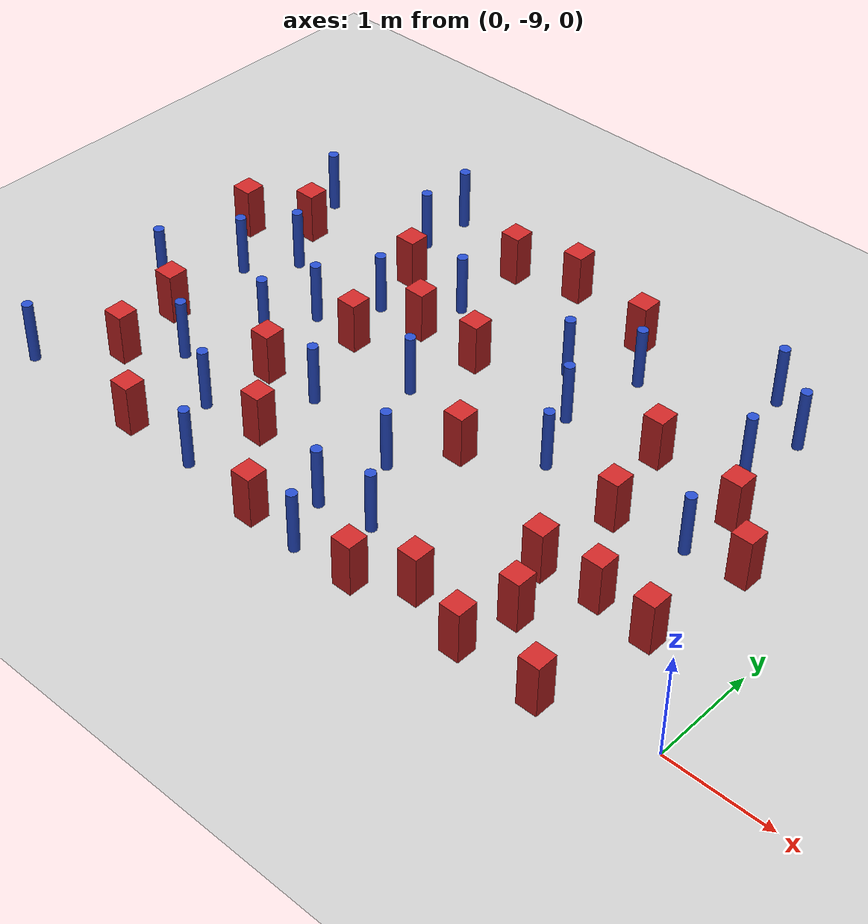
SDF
<sdf version="1.6">
 <world name="default">
  <model name="ground_plane">
   <static>1</static>
   <link name="link">
    <collision name="collision">
     <geometry><plane><normal>0 0 1</normal><size>100 100</size></plane></geometry>
     <surface><friction><ode><mu>100</mu><mu2>50</mu2></ode></friction></surface>
    </collision>
    <visual name="visual">
     <cast_shadows>0</cast_shadows>
     <geometry><plane><normal>0 0 1</normal><size>100 100</size></plane></geometry>
     <material>
      <ambient>1.0 1.0 1.0 1.0</ambient>
      <diffuse>0.8 0.8 0.8 1.0</diffuse>
      <specular>0.01 0.01 0.01 1.000000</specular>
     </material>
    </visual>
   </link>
  </model>
  <model name="pole_obstacle1">
   <static>true</static>
   <pose>-3.12867233561 -8.74492226256 2.88873142074e-08 -9.9053668994e-09 4.60219948987e-07 -1.20965994963e-07</pose>
   <link name="link">
    <pose>0 0 0.3 0 -0 0</pose>
    <inertial>
     <mass>1</mass>
     <inertia><ixx>0.145833</ixx><ixy>0</ixy><ixz>0</ixz><iyy>0.145833</iyy><iyz>0</iyz><izz>0.125</izz></inertia>
    </inertial>
    <collision name="collision">
     <geometry><cylinder><radius>0.05</radius><length>.6</length></cylinder></geometry>
    </collision>
    <visual name="visual">
     <geometry><cylinder><radius>0.05</radius><length>.6</length></cylinder></geometry>
     <material>
      <script><name>Gazebo/Blue</name><uri>file://media/materials/scripts/gazebo.material</uri></script>
     </material>
    </visual>
   </link>
  </model>
  <model name="pole_obstacle2">
   <static>true</static>
   <pose>-3.64135293143 -8.83523034497 2.88873142074e-08 -9.90536692318e-09 4.6021994893e-07 -1.20965994988e-07</pose>
   <link name="link">
    <pose>0 0 0.3 0 -0 0</pose>
    <inertial>
     <mass>1</mass>
     <inertia><ixx>0.145833</ixx><ixy>0</ixy><ixz>0</ixz><iyy>0.145833</iyy><iyz>0</iyz><izz>0.125</izz></inertia>
    </inertial>
    <collision name="collision">
     <geometry><cylinder><radius>0.05</radius><length>.6</length></cylinder></geometry>
    </collision>
    <visual name="visual">
     <geometry><cylinder><radius>0.05</radius><length>.6</length></cylinder></geometry>
     <material>
      <script><name>Gazebo/Blue</name><uri>file://media/materials/scripts/gazebo.material</uri></script>
     </material>
    </visual>
   </link>
  </model>
  <model name="square_post_obstacle4">
   <static>true</static>
   <pose>-3.94886343294 -6.59833227282 8.22691968438e-08 7.22125133819e-06 -7.54495500217e-07 2.29674213826e-05</pose>
   <link name="link">
    <pose>0 0 0.25 0 -0 0</pose>
    <inertial>
     <mass>100</mass>
     <inertia>
      <ixx>0.166667</ixx>
      <ixy>0</ixy>
      <ixz>0</ixz>
      <iyy>0.166667</iyy>
      <iyz>0</iyz>
      <izz>0.166667</izz>
     </inertia>
    </inertial>
    <collision name="collision"><geometry><box><size>.2 .2 .5</size></box></geometry></collision>
    <visual name="visual">
     <geometry><box><size>.2 .2 .5</size></box></geometry>
     <material>
      <script><name>Gazebo/Red</name><uri>file://media/materials/scripts/gazebo.material</uri></script>
     </material>
    </visual>
   </link>
  </model>
  <model name="pole_obstacle19">
   <static>true</static>
   <pose>-5.90801611379 -8.27726933785 2.88873142074e-08 -9.9053668967e-09 4.60219948993e-07 -1.20965994957e-07</pose>
   <link name="link">
    <pose>0 0 0.3 0 -0 0</pose>
    <inertial>
     <mass>1</mass>
     <inertia><ixx>0.145833</ixx><ixy>0</ixy><ixz>0</ixz><iyy>0.145833</iyy><iyz>0</iyz><izz>0.125</izz></inertia>
    </inertial>
    <collision name="collision">
     <geometry><cylinder><radius>0.05</radius><length>.6</length></cylinder></geometry>
    </collision>
    <visual name="visual">
     <geometry><cylinder><radius>0.05</radius><length>.6</length></cylinder></geometry>
     <material>
      <script><name>Gazebo/Blue</name><uri>file://media/materials/scripts/gazebo.material</uri></script>
     </material>
    </visual>
   </link>
  </model>
  <model name="pole_obstacle28">
   <static>true</static>
   <pose>-6.84868157761 -9.22441285087 2.88873142074e-08 -9.9053668967e-09 4.60219948993e-07 -1.20965994957e-07</pose>
   <link name="link">
    <pose>0 0 0.3 0 -0 0</pose>
    <inertial>
     <mass>1</mass>
     <inertia><ixx>0.145833</ixx><ixy>0</ixy><ixz>0</ixz><iyy>0.145833</iyy><iyz>0</iyz><izz>0.125</izz></inertia>
    </inertial>
    <collision name="collision">
     <geometry><cylinder><radius>0.05</radius><length>.6</length></cylinder></geometry>
    </collision>
    <visual name="visual">
     <geometry><cylinder><radius>0.05</radius><length>.6</length></cylinder></geometry>
     <material>
      <script><name>Gazebo/Blue</name><uri>file://media/materials/scripts/gazebo.material</uri></script>
     </material>
    </visual>
   </link>
  </model>
  <model name="square_post_obstacle23">
   <static>true</static>
   <pose>-3.20889072496 -7.59951702189 8.22691968438e-08 7.2212513382e-06 -7.54495500217e-07 2.29674213826e-05</pose>
   <link name="link">
    <pose>0 0 0.25 0 -0 0</pose>
    <inertial>
     <mass>100</mass>
     <inertia>
      <ixx>0.166667</ixx>
      <ixy>0</ixy>
      <ixz>0</ixz>
      <iyy>0.166667</iyy>
      <iyz>0</iyz>
      <izz>0.166667</izz>
     </inertia>
    </inertial>
    <collision name="collision"><geometry><box><size>.2 .2 .5</size></box></geometry></collision>
    <visual name="visual">
     <geometry><box><size>.2 .2 .5</size></box></geometry>
     <material>
      <script><name>Gazebo/Red</name><uri>file://media/materials/scripts/gazebo.material</uri></script>
     </material>
    </visual>
   </link>
  </model>
  <model name="square_post_obstacle27">
   <static>true</static>
   <pose>-0.969384696367 -9.24757038586 8.22691968438e-08 7.22125133819e-06 -7.54495500217e-07 2.29674213826e-05</pose>
   <link name="link">
    <pose>0 0 0.25 0 -0 0</pose>
    <inertial>
     <mass>100</mass>
     <inertia>
      <ixx>0.166667</ixx>
      <ixy>0</ixy>
      <ixz>0</ixz>
      <iyy>0.166667</iyy>
      <iyz>0</iyz>
      <izz>0.166667</izz>
     </inertia>
    </inertial>
    <collision name="collision"><geometry><box><size>.2 .2 .5</size></box></geometry></collision>
    <visual name="visual">
     <geometry><box><size>.2 .2 .5</size></box></geometry>
     <material>
      <script><name>Gazebo/Red</name><uri>file://media/materials/scripts/gazebo.material</uri></script>
     </material>
    </visual>
   </link>
  </model>
  <model name="square_post_obstacle30">
   <static>true</static>
   <pose>-6.9409519317 -6.51875384566 8.22691968438e-08 7.2212513382e-06 -7.54495500217e-07 2.29674213826e-05</pose>
   <link name="link">
    <pose>0 0 0.25 0 -0 0</pose>
    <inertial>
     <mass>100</mass>
     <inertia>
      <ixx>0.166667</ixx>
      <ixy>0</ixy>
      <ixz>0</ixz>
      <iyy>0.166667</iyy>
      <iyz>0</iyz>
      <izz>0.166667</izz>
     </inertia>
    </inertial>
    <collision name="collision"><geometry><box><size>.2 .2 .5</size></box></geometry></collision>
    <visual name="visual">
     <geometry><box><size>.2 .2 .5</size></box></geometry>
     <material>
      <script><name>Gazebo/Red</name><uri>file://media/materials/scripts/gazebo.material</uri></script>
     </material>
    </visual>
   </link>
  </model>
  <model name="pole_obstacle36">
   <static>true</static>
   <pose>-6.16772446758 -6.61041729582 2.88873142074e-08 -9.90536690842e-09 4.60219948965e-07 -1.20965994976e-07</pose>
   <link name="link">
    <pose>0 0 0.3 0 -0 0</pose>
    <inertial>
     <mass>1</mass>
     <inertia><ixx>0.145833</ixx><ixy>0</ixy><ixz>0</ixz><iyy>0.145833</iyy><iyz>0</iyz><izz>0.125</izz></inertia>
    </inertial>
    <collision name="collision">
     <geometry><cylinder><radius>0.05</radius><length>.6</length></cylinder></geometry>
    </collision>
    <visual name="visual">
     <geometry><cylinder><radius>0.05</radius><length>.6</length></cylinder></geometry>
     <material>
      <script><name>Gazebo/Blue</name><uri>file://media/materials/scripts/gazebo.material</uri></script>
     </material>
    </visual>
   </link>
  </model>
  <model name="pole_obstacle38">
   <static>true</static>
   <pose>-1.68911911757 -5.19332564806 2.88873142074e-08 -9.90536689852e-09 4.60219948989e-07 -1.2096599496e-07</pose>
   <link name="link">
    <pose>0 0 0.3 0 -0 0</pose>
    <inertial>
     <mass>1</mass>
     <inertia><ixx>0.145833</ixx><ixy>0</ixy><ixz>0</ixz><iyy>0.145833</iyy><iyz>0</iyz><izz>0.125</izz></inertia>
    </inertial>
    <collision name="collision">
     <geometry><cylinder><radius>0.05</radius><length>.6</length></cylinder></geometry>
    </collision>
    <visual name="visual">
     <geometry><cylinder><radius>0.05</radius><length>.6</length></cylinder></geometry>
     <material>
      <script><name>Gazebo/Blue</name><uri>file://media/materials/scripts/gazebo.material</uri></script>
     </material>
    </visual>
   </link>
  </model>
  <model name="pole_obstacle44">
   <static>true</static>
   <pose>-6.48443075153 -7.03172573249 2.88873142074e-08 -9.90536690842e-09 4.60219948965e-07 -1.20965994976e-07</pose>
   <link name="link">
    <pose>0 0 0.3 0 -0 0</pose>
    <inertial>
     <mass>1</mass>
     <inertia><ixx>0.145833</ixx><ixy>0</ixy><ixz>0</ixz><iyy>0.145833</iyy><iyz>0</iyz><izz>0.125</izz></inertia>
    </inertial>
    <collision name="collision">
     <geometry><cylinder><radius>0.05</radius><length>.6</length></cylinder></geometry>
    </collision>
    <visual name="visual">
     <geometry><cylinder><radius>0.05</radius><length>.6</length></cylinder></geometry>
     <material>
      <script><name>Gazebo/Blue</name><uri>file://media/materials/scripts/gazebo.material</uri></script>
     </material>
    </visual>
   </link>
  </model>
  <model name="pole_obstacle49">
   <static>true</static>
   <pose>-5.24488563336 -8.61744730685 2.88873142074e-08 -9.9053668967e-09 4.60219948993e-07 -1.20965994957e-07</pose>
   <link name="link">
    <pose>0 0 0.3 0 -0 0</pose>
    <inertial>
     <mass>1</mass>
     <inertia><ixx>0.145833</ixx><ixy>0</ixy><ixz>0</ixz><iyy>0.145833</iyy><iyz>0</iyz><izz>0.125</izz></inertia>
    </inertial>
    <collision name="collision">
     <geometry><cylinder><radius>0.05</radius><length>.6</length></cylinder></geometry>
    </collision>
    <visual name="visual">
     <geometry><cylinder><radius>0.05</radius><length>.6</length></cylinder></geometry>
     <material>
      <script><name>Gazebo/Blue</name><uri>file://media/materials/scripts/gazebo.material</uri></script>
     </material>
    </visual>
   </link>
  </model>
  <model name="pole_obstacle55">
   <static>true</static>
   <pose>-6.63396487807 -5.67322181627 2.88873142074e-08 -9.90536690842e-09 4.60219948965e-07 -1.20965994976e-07</pose>
   <link name="link">
    <pose>0 0 0.3 0 -0 0</pose>
    <inertial>
     <mass>1</mass>
     <inertia><ixx>0.145833</ixx><ixy>0</ixy><ixz>0</ixz><iyy>0.145833</iyy><iyz>0</iyz><izz>0.125</izz></inertia>
    </inertial>
    <collision name="collision">
     <geometry><cylinder><radius>0.05</radius><length>.6</length></cylinder></geometry>
    </collision>
    <visual name="visual">
     <geometry><cylinder><radius>0.05</radius><length>.6</length></cylinder></geometry>
     <material>
      <script><name>Gazebo/Blue</name><uri>file://media/materials/scripts/gazebo.material</uri></script>
     </material>
    </visual>
   </link>
  </model>
  <model name="pole_obstacle66">
   <static>true</static>
   <pose>-6.89583773151 -7.67243533911 2.88873142074e-08 -9.90536690842e-09 4.60219948965e-07 -1.20965994976e-07</pose>
   <link name="link">
    <pose>0 0 0.3 0 -0 0</pose>
    <inertial>
     <mass>1</mass>
     <inertia><ixx>0.145833</ixx><ixy>0</ixy><ixz>0</ixz><iyy>0.145833</iyy><iyz>0</iyz><izz>0.125</izz></inertia>
    </inertial>
    <collision name="collision">
     <geometry><cylinder><radius>0.05</radius><length>.6</length></cylinder></geometry>
    </collision>
    <visual name="visual">
     <geometry><cylinder><radius>0.05</radius><length>.6</length></cylinder></geometry>
     <material>
      <script><name>Gazebo/Blue</name><uri>file://media/materials/scripts/gazebo.material</uri></script>
     </material>
    </visual>
   </link>
  </model>
  <model name="pole_obstacle67">
   <static>true</static>
   <pose>-4.56918458173 -6.08402707474 2.88873142074e-08 -9.90536690842e-09 4.60219948965e-07 -1.20965994976e-07</pose>
   <link name="link">
    <pose>0 0 0.3 0 -0 0</pose>
    <inertial>
     <mass>1</mass>
     <inertia><ixx>0.145833</ixx><ixy>0</ixy><ixz>0</ixz><iyy>0.145833</iyy><iyz>0</iyz><izz>0.125</izz></inertia>
    </inertial>
    <collision name="collision">
     <geometry><cylinder><radius>0.05</radius><length>.6</length></cylinder></geometry>
    </collision>
    <visual name="visual">
     <geometry><cylinder><radius>0.05</radius><length>.6</length></cylinder></geometry>
     <material>
      <script><name>Gazebo/Blue</name><uri>file://media/materials/scripts/gazebo.material</uri></script>
     </material>
    </visual>
   </link>
  </model>
  <model name="square_post_obstacle56">
   <static>true</static>
   <pose>-5.229321086 -6.05015893627 8.22691968438e-08 7.2212513382e-06 -7.54495500217e-07 2.29674213826e-05</pose>
   <link name="link">
    <pose>0 0 0.25 0 -0 0</pose>
    <inertial>
     <mass>100</mass>
     <inertia>
      <ixx>0.166667</ixx>
      <ixy>0</ixy>
      <ixz>0</ixz>
      <iyy>0.166667</iyy>
      <iyz>0</iyz>
      <izz>0.166667</izz>
     </inertia>
    </inertial>
    <collision name="collision"><geometry><box><size>.2 .2 .5</size></box></geometry></collision>
    <visual name="visual">
     <geometry><box><size>.2 .2 .5</size></box></geometry>
     <material>
      <script><name>Gazebo/Red</name><uri>file://media/materials/scripts/gazebo.material</uri></script>
     </material>
    </visual>
   </link>
  </model>
  <model name="pole_obstacle80">
   <static>true</static>
   <pose>-1.22519912602 -5.5488598311 2.88873142074e-08 -9.90536689852e-09 4.60219948989e-07 -1.2096599496e-07</pose>
   <link name="link">
    <pose>0 0 0.3 0 -0 0</pose>
    <inertial>
     <mass>1</mass>
     <inertia><ixx>0.145833</ixx><ixy>0</ixy><ixz>0</ixz><iyy>0.145833</iyy><iyz>0</iyz><izz>0.125</izz></inertia>
    </inertial>
    <collision name="collision">
     <geometry><cylinder><radius>0.05</radius><length>.6</length></cylinder></geometry>
    </collision>
    <visual name="visual">
     <geometry><cylinder><radius>0.05</radius><length>.6</length></cylinder></geometry>
     <material>
      <script><name>Gazebo/Blue</name><uri>file://media/materials/scripts/gazebo.material</uri></script>
     </material>
    </visual>
   </link>
  </model>
  <model name="square_post_obstacle71">
   <static>true</static>
   <pose>-3.95317050462 -5.17468336658 8.22691968438e-08 7.2212513382e-06 -7.54495500217e-07 2.29674213826e-05</pose>
   <link name="link">
    <pose>0 0 0.25 0 -0 0</pose>
    <inertial>
     <mass>100</mass>
     <inertia>
      <ixx>0.166667</ixx>
      <ixy>0</ixy>
      <ixz>0</ixz>
      <iyy>0.166667</iyy>
      <iyz>0</iyz>
      <izz>0.166667</izz>
     </inertia>
    </inertial>
    <collision name="collision"><geometry><box><size>.2 .2 .5</size></box></geometry></collision>
    <visual name="visual">
     <geometry><box><size>.2 .2 .5</size></box></geometry>
     <material>
      <script><name>Gazebo/Red</name><uri>file://media/materials/scripts/gazebo.material</uri></script>
     </material>
    </visual>
   </link>
  </model>
  <model name="pole_obstacle83">
   <static>true</static>
   <pose>-3.40982089653 -9.33306898877 2.88873142074e-08 -9.9053668994e-09 4.60219948987e-07 -1.20965994963e-07</pose>
   <link name="link">
    <pose>0 0 0.3 0 -0 0</pose>
    <inertial>
     <mass>1</mass>
     <inertia><ixx>0.145833</ixx><ixy>0</ixy><ixz>0</ixz><iyy>0.145833</iyy><iyz>0</iyz><izz>0.125</izz></inertia>
    </inertial>
    <collision name="collision">
     <geometry><cylinder><radius>0.05</radius><length>.6</length></cylinder></geometry>
    </collision>
    <visual name="visual">
     <geometry><cylinder><radius>0.05</radius><length>.6</length></cylinder></geometry>
     <material>
      <script><name>Gazebo/Blue</name><uri>file://media/materials/scripts/gazebo.material</uri></script>
     </material>
    </visual>
   </link>
  </model>
  <model name="square_post_obstacle73">
   <static>true</static>
   <pose>-1.83567977775 -8.19194265212 8.22691968438e-08 7.22125133819e-06 -7.54495500217e-07 2.29674213826e-05</pose>
   <link name="link">
    <pose>0 0 0.25 0 -0 0</pose>
    <inertial>
     <mass>100</mass>
     <inertia>
      <ixx>0.166667</ixx>
      <ixy>0</ixy>
      <ixz>0</ixz>
      <iyy>0.166667</iyy>
      <iyz>0</iyz>
      <izz>0.166667</izz>
     </inertia>
    </inertial>
    <collision name="collision"><geometry><box><size>.2 .2 .5</size></box></geometry></collision>
    <visual name="visual">
     <geometry><box><size>.2 .2 .5</size></box></geometry>
     <material>
      <script><name>Gazebo/Red</name><uri>file://media/materials/scripts/gazebo.material</uri></script>
     </material>
    </visual>
   </link>
  </model>
  <model name="square_post_obstacle74">
   <static>true</static>
   <pose>-1.62279412757 -8.71226753803 8.22691968438e-08 7.22125133819e-06 -7.54495500217e-07 2.29674213826e-05</pose>
   <link name="link">
    <pose>0 0 0.25 0 -0 0</pose>
    <inertial>
     <mass>100</mass>
     <inertia>
      <ixx>0.166667</ixx>
      <ixy>0</ixy>
      <ixz>0</ixz>
      <iyy>0.166667</iyy>
      <iyz>0</iyz>
      <izz>0.166667</izz>
     </inertia>
    </inertial>
    <collision name="collision"><geometry><box><size>.2 .2 .5</size></box></geometry></collision>
    <visual name="visual">
     <geometry><box><size>.2 .2 .5</size></box></geometry>
     <material>
      <script><name>Gazebo/Red</name><uri>file://media/materials/scripts/gazebo.material</uri></script>
     </material>
    </visual>
   </link>
  </model>
  <model name="square_post_obstacle94">
   <static>true</static>
   <pose>-6.30077328983 -8.6387321531 8.22691968438e-08 7.22125133819e-06 -7.54495500217e-07 2.29674213826e-05</pose>
   <link name="link">
    <pose>0 0 0.25 0 -0 0</pose>
    <inertial>
     <mass>100</mass>
     <inertia>
      <ixx>0.166667</ixx>
      <ixy>0</ixy>
      <ixz>0</ixz>
      <iyy>0.166667</iyy>
      <iyz>0</iyz>
      <izz>0.166667</izz>
     </inertia>
    </inertial>
    <collision name="collision"><geometry><box><size>.2 .2 .5</size></box></geometry></collision>
    <visual name="visual">
     <geometry><box><size>.2 .2 .5</size></box></geometry>
     <material>
      <script><name>Gazebo/Red</name><uri>file://media/materials/scripts/gazebo.material</uri></script>
     </material>
    </visual>
   </link>
  </model>
  <model name="pole_obstacle102">
   <static>true</static>
   <pose>-3.26908662558 -6.13149794768 2.88873142074e-08 -9.90536692062e-09 4.60219948937e-07 -1.20965994985e-07</pose>
   <link name="link">
    <pose>0 0 0.3 0 -0 0</pose>
    <inertial>
     <mass>1</mass>
     <inertia><ixx>0.145833</ixx><ixy>0</ixy><ixz>0</ixz><iyy>0.145833</iyy><iyz>0</iyz><izz>0.125</izz></inertia>
    </inertial>
    <collision name="collision">
     <geometry><cylinder><radius>0.05</radius><length>.6</length></cylinder></geometry>
    </collision>
    <visual name="visual">
     <geometry><cylinder><radius>0.05</radius><length>.6</length></cylinder></geometry>
     <material>
      <script><name>Gazebo/Blue</name><uri>file://media/materials/scripts/gazebo.material</uri></script>
     </material>
    </visual>
   </link>
  </model>
  <model name="square_post_obstacle108">
   <static>true</static>
   <pose>-1.78311085684 -7.34588108929 8.22691968438e-08 7.2212513382e-06 -7.54495500217e-07 2.29674213826e-05</pose>
   <link name="link">
    <pose>0 0 0.25 0 -0 0</pose>
    <inertial>
     <mass>100</mass>
     <inertia>
      <ixx>0.166667</ixx>
      <ixy>0</ixy>
      <ixz>0</ixz>
      <iyy>0.166667</iyy>
      <iyz>0</iyz>
      <izz>0.166667</izz>
     </inertia>
    </inertial>
    <collision name="collision"><geometry><box><size>.2 .2 .5</size></box></geometry></collision>
    <visual name="visual">
     <geometry><box><size>.2 .2 .5</size></box></geometry>
     <material>
      <script><name>Gazebo/Red</name><uri>file://media/materials/scripts/gazebo.material</uri></script>
     </material>
    </visual>
   </link>
  </model>
  <model name="pole_obstacle115">
   <static>true</static>
   <pose>-5.12276142174 -6.57495652958 2.88873142074e-08 -9.90536690842e-09 4.60219948965e-07 -1.20965994976e-07</pose>
   <link name="link">
    <pose>0 0 0.3 0 -0 0</pose>
    <inertial>
     <mass>1</mass>
     <inertia><ixx>0.145833</ixx><ixy>0</ixy><ixz>0</ixz><iyy>0.145833</iyy><iyz>0</iyz><izz>0.125</izz></inertia>
    </inertial>
    <collision name="collision">
     <geometry><cylinder><radius>0.05</radius><length>.6</length></cylinder></geometry>
    </collision>
    <visual name="visual">
     <geometry><cylinder><radius>0.05</radius><length>.6</length></cylinder></geometry>
     <material>
      <script><name>Gazebo/Blue</name><uri>file://media/materials/scripts/gazebo.material</uri></script>
     </material>
    </visual>
   </link>
  </model>
  <model name="square_post_obstacle115">
   <static>true</static>
   <pose>-0.627973358505 -7.15564752201 8.22691968438e-08 7.2212513382e-06 -7.54495500217e-07 2.29674213826e-05</pose>
   <link name="link">
    <pose>0 0 0.25 0 -0 0</pose>
    <inertial>
     <mass>100</mass>
     <inertia>
      <ixx>0.166667</ixx>
      <ixy>0</ixy>
      <ixz>0</ixz>
      <iyy>0.166667</iyy>
      <iyz>0</iyz>
      <izz>0.166667</izz>
     </inertia>
    </inertial>
    <collision name="collision"><geometry><box><size>.2 .2 .5</size></box></geometry></collision>
    <visual name="visual">
     <geometry><box><size>.2 .2 .5</size></box></geometry>
     <material>
      <script><name>Gazebo/Red</name><uri>file://media/materials/scripts/gazebo.material</uri></script>
     </material>
    </visual>
   </link>
  </model>
  <model name="pole_obstacle118">
   <static>true</static>
   <pose>-2.86742708768 -6.62317907112 2.88873142074e-08 -9.90536689859e-09 4.60219948989e-07 -1.20965994961e-07</pose>
   <link name="link">
    <pose>0 0 0.3 0 -0 0</pose>
    <inertial>
     <mass>1</mass>
     <inertia><ixx>0.145833</ixx><ixy>0</ixy><ixz>0</ixz><iyy>0.145833</iyy><iyz>0</iyz><izz>0.125</izz></inertia>
    </inertial>
    <collision name="collision">
     <geometry><cylinder><radius>0.05</radius><length>.6</length></cylinder></geometry>
    </collision>
    <visual name="visual">
     <geometry><cylinder><radius>0.05</radius><length>.6</length></cylinder></geometry>
     <material>
      <script><name>Gazebo/Blue</name><uri>file://media/materials/scripts/gazebo.material</uri></script>
     </material>
    </visual>
   </link>
  </model>
  <model name="pole_obstacle124">
   <static>true</static>
   <pose>-2.59901280519 -7.20192582853 2.88873142074e-08 -9.90536689859e-09 4.60219948989e-07 -1.20965994961e-07</pose>
   <link name="link">
    <pose>0 0 0.3 0 -0 0</pose>
    <inertial>
     <mass>1</mass>
     <inertia><ixx>0.145833</ixx><ixy>0</ixy><ixz>0</ixz><iyy>0.145833</iyy><iyz>0</iyz><izz>0.125</izz></inertia>
    </inertial>
    <collision name="collision">
     <geometry><cylinder><radius>0.05</radius><length>.6</length></cylinder></geometry>
    </collision>
    <visual name="visual">
     <geometry><cylinder><radius>0.05</radius><length>.6</length></cylinder></geometry>
     <material>
      <script><name>Gazebo/Blue</name><uri>file://media/materials/scripts/gazebo.material</uri></script>
     </material>
    </visual>
   </link>
  </model>
  <model name="pole_obstacle125">
   <static>true</static>
   <pose>-1.36045282553 -6.11391550655 2.88873142074e-08 -9.90536689852e-09 4.60219948989e-07 -1.2096599496e-07</pose>
   <link name="link">
    <pose>0 0 0.3 0 -0 0</pose>
    <inertial>
     <mass>1</mass>
     <inertia><ixx>0.145833</ixx><ixy>0</ixy><ixz>0</ixz><iyy>0.145833</iyy><iyz>0</iyz><izz>0.125</izz></inertia>
    </inertial>
    <collision name="collision">
     <geometry><cylinder><radius>0.05</radius><length>.6</length></cylinder></geometry>
    </collision>
    <visual name="visual">
     <geometry><cylinder><radius>0.05</radius><length>.6</length></cylinder></geometry>
     <material>
      <script><name>Gazebo/Blue</name><uri>file://media/materials/scripts/gazebo.material</uri></script>
     </material>
    </visual>
   </link>
  </model>
  <model name="square_post_obstacle123">
   <static>true</static>
   <pose>-3.9340507983 -9.30587147016 8.22691968438e-08 7.22125133819e-06 -7.54495500217e-07 2.29674213826e-05</pose>
   <link name="link">
    <pose>0 0 0.25 0 -0 0</pose>
    <inertial>
     <mass>100</mass>
     <inertia>
      <ixx>0.166667</ixx>
      <ixy>0</ixy>
      <ixz>0</ixz>
      <iyy>0.166667</iyy>
      <iyz>0</iyz>
      <izz>0.166667</izz>
     </inertia>
    </inertial>
    <collision name="collision"><geometry><box><size>.2 .2 .5</size></box></geometry></collision>
    <visual name="visual">
     <geometry><box><size>.2 .2 .5</size></box></geometry>
     <material>
      <script><name>Gazebo/Red</name><uri>file://media/materials/scripts/gazebo.material</uri></script>
     </material>
    </visual>
   </link>
  </model>
  <model name="pole_obstacle135">
   <static>true</static>
   <pose>-5.63328235787 -7.56282062576 2.88873142074e-08 -9.90536690842e-09 4.60219948965e-07 -1.20965994976e-07</pose>
   <link name="link">
    <pose>0 0 0.3 0 -0 0</pose>
    <inertial>
     <mass>1</mass>
     <inertia><ixx>0.145833</ixx><ixy>0</ixy><ixz>0</ixz><iyy>0.145833</iyy><iyz>0</iyz><izz>0.125</izz></inertia>
    </inertial>
    <collision name="collision">
     <geometry><cylinder><radius>0.05</radius><length>.6</length></cylinder></geometry>
    </collision>
    <visual name="visual">
     <geometry><cylinder><radius>0.05</radius><length>.6</length></cylinder></geometry>
     <material>
      <script><name>Gazebo/Blue</name><uri>file://media/materials/scripts/gazebo.material</uri></script>
     </material>
    </visual>
   </link>
  </model>
  <model name="pole_obstacle140">
   <static>true</static>
   <pose>-5.49774811703 -5.02687887272 2.88873142074e-08 -9.90536690842e-09 4.60219948965e-07 -1.20965994976e-07</pose>
   <link name="link">
    <pose>0 0 0.3 0 -0 0</pose>
    <inertial>
     <mass>1</mass>
     <inertia><ixx>0.145833</ixx><ixy>0</ixy><ixz>0</ixz><iyy>0.145833</iyy><iyz>0</iyz><izz>0.125</izz></inertia>
    </inertial>
    <collision name="collision">
     <geometry><cylinder><radius>0.05</radius><length>.6</length></cylinder></geometry>
    </collision>
    <visual name="visual">
     <geometry><cylinder><radius>0.05</radius><length>.6</length></cylinder></geometry>
     <material>
      <script><name>Gazebo/Blue</name><uri>file://media/materials/scripts/gazebo.material</uri></script>
     </material>
    </visual>
   </link>
  </model>
  <model name="square_post_obstacle137">
   <static>true</static>
   <pose>-1.99005077017 -6.50625499944 8.22691968438e-08 7.2212513382e-06 -7.54495500217e-07 2.29674213826e-05</pose>
   <link name="link">
    <pose>0 0 0.25 0 -0 0</pose>
    <inertial>
     <mass>100</mass>
     <inertia>
      <ixx>0.166667</ixx>
      <ixy>0</ixy>
      <ixz>0</ixz>
      <iyy>0.166667</iyy>
      <iyz>0</iyz>
      <izz>0.166667</izz>
     </inertia>
    </inertial>
    <collision name="collision"><geometry><box><size>.2 .2 .5</size></box></geometry></collision>
    <visual name="visual">
     <geometry><box><size>.2 .2 .5</size></box></geometry>
     <material>
      <script><name>Gazebo/Red</name><uri>file://media/materials/scripts/gazebo.material</uri></script>
     </material>
    </visual>
   </link>
  </model>
  <model name="pole_obstacle142">
   <static>true</static>
   <pose>-5.51176082079 -5.54423698488 2.88873142074e-08 -9.90536690842e-09 4.60219948965e-07 -1.20965994976e-07</pose>
   <link name="link">
    <pose>0 0 0.3 0 -0 0</pose>
    <inertial>
     <mass>1</mass>
     <inertia><ixx>0.145833</ixx><ixy>0</ixy><ixz>0</ixz><iyy>0.145833</iyy><iyz>0</iyz><izz>0.125</izz></inertia>
    </inertial>
    <collision name="collision">
     <geometry><cylinder><radius>0.05</radius><length>.6</length></cylinder></geometry>
    </collision>
    <visual name="visual">
     <geometry><cylinder><radius>0.05</radius><length>.6</length></cylinder></geometry>
     <material>
      <script><name>Gazebo/Blue</name><uri>file://media/materials/scripts/gazebo.material</uri></script>
     </material>
    </visual>
   </link>
  </model>
  <model name="pole_obstacle144">
   <static>true</static>
   <pose>-2.7269137718 -5.81378869282 2.88873142074e-08 -9.90536689859e-09 4.60219948989e-07 -1.20965994961e-07</pose>
   <link name="link">
    <pose>0 0 0.3 0 -0 0</pose>
    <inertial>
     <mass>1</mass>
     <inertia><ixx>0.145833</ixx><ixy>0</ixy><ixz>0</ixz><iyy>0.145833</iyy><iyz>0</iyz><izz>0.125</izz></inertia>
    </inertial>
    <collision name="collision">
     <geometry><cylinder><radius>0.05</radius><length>.6</length></cylinder></geometry>
    </collision>
    <visual name="visual">
     <geometry><cylinder><radius>0.05</radius><length>.6</length></cylinder></geometry>
     <material>
      <script><name>Gazebo/Blue</name><uri>file://media/materials/scripts/gazebo.material</uri></script>
     </material>
    </visual>
   </link>
  </model>
  <model name="pole_obstacle145">
   <static>true</static>
   <pose>-1.14554320929 -7.22129354948 2.88873142074e-08 -9.90536689852e-09 4.60219948989e-07 -1.2096599496e-07</pose>
   <link name="link">
    <pose>0 0 0.3 0 -0 0</pose>
    <inertial>
     <mass>1</mass>
     <inertia><ixx>0.145833</ixx><ixy>0</ixy><ixz>0</ixz><iyy>0.145833</iyy><iyz>0</iyz><izz>0.125</izz></inertia>
    </inertial>
    <collision name="collision">
     <geometry><cylinder><radius>0.05</radius><length>.6</length></cylinder></geometry>
    </collision>
    <visual name="visual">
     <geometry><cylinder><radius>0.05</radius><length>.6</length></cylinder></geometry>
     <material>
      <script><name>Gazebo/Blue</name><uri>file://media/materials/scripts/gazebo.material</uri></script>
     </material>
    </visual>
   </link>
  </model>
  <model name="square_post_obstacle146">
   <static>true</static>
   <pose>-4.61502674714 -8.57245891216 8.22691968438e-08 7.2212513382e-06 -7.54495500217e-07 2.29674213826e-05</pose>
   <link name="link">
    <pose>0 0 0.25 0 -0 0</pose>
    <inertial>
     <mass>100</mass>
     <inertia>
      <ixx>0.166667</ixx>
      <ixy>0</ixy>
      <ixz>0</ixz>
      <iyy>0.166667</iyy>
      <iyz>0</iyz>
      <izz>0.166667</izz>
     </inertia>
    </inertial>
    <collision name="collision"><geometry><box><size>.2 .2 .5</size></box></geometry></collision>
    <visual name="visual">
     <geometry><box><size>.2 .2 .5</size></box></geometry>
     <material>
      <script><name>Gazebo/Red</name><uri>file://media/materials/scripts/gazebo.material</uri></script>
     </material>
    </visual>
   </link>
  </model>
  <model name="square_post_obstacle148">
   <static>true</static>
   <pose>-1.07184963209 -6.68382211558 8.22691968438e-08 7.2212513382e-06 -7.54495500217e-07 2.29674213826e-05</pose>
   <link name="link">
    <pose>0 0 0.25 0 -0 0</pose>
    <inertial>
     <mass>100</mass>
     <inertia>
      <ixx>0.166667</ixx>
      <ixy>0</ixy>
      <ixz>0</ixz>
      <iyy>0.166667</iyy>
      <iyz>0</iyz>
      <izz>0.166667</izz>
     </inertia>
    </inertial>
    <collision name="collision"><geometry><box><size>.2 .2 .5</size></box></geometry></collision>
    <visual name="visual">
     <geometry><box><size>.2 .2 .5</size></box></geometry>
     <material>
      <script><name>Gazebo/Red</name><uri>file://media/materials/scripts/gazebo.material</uri></script>
     </material>
    </visual>
   </link>
  </model>
  <model name="square_post_obstacle151">
   <static>true</static>
   <pose>-5.16499202709 -7.94492409063 8.22691968438e-08 7.2212513382e-06 -7.54495500217e-07 2.29674213826e-05</pose>
   <link name="link">
    <pose>0 0 0.25 0 -0 0</pose>
    <inertial>
     <mass>100</mass>
     <inertia>
      <ixx>0.166667</ixx>
      <ixy>0</ixy>
      <ixz>0</ixz>
      <iyy>0.166667</iyy>
      <iyz>0</iyz>
      <izz>0.166667</izz>
     </inertia>
    </inertial>
    <collision name="collision"><geometry><box><size>.2 .2 .5</size></box></geometry></collision>
    <visual name="visual">
     <geometry><box><size>.2 .2 .5</size></box></geometry>
     <material>
      <script><name>Gazebo/Red</name><uri>file://media/materials/scripts/gazebo.material</uri></script>
     </material>
    </visual>
   </link>
  </model>
  <model name="square_post_obstacle159">
   <static>true</static>
   <pose>-4.93995761411 -7.11078554485 8.22691968438e-08 7.22125133819e-06 -7.54495500217e-07 2.29674213826e-05</pose>
   <link name="link">
    <pose>0 0 0.25 0 -0 0</pose>
    <inertial>
     <mass>100</mass>
     <inertia>
      <ixx>0.166667</ixx>
      <ixy>0</ixy>
      <ixz>0</ixz>
      <iyy>0.166667</iyy>
      <iyz>0</iyz>
      <izz>0.166667</izz>
     </inertia>
    </inertial>
    <collision name="collision"><geometry><box><size>.2 .2 .5</size></box></geometry></collision>
    <visual name="visual">
     <geometry><box><size>.2 .2 .5</size></box></geometry>
     <material>
      <script><name>Gazebo/Red</name><uri>file://media/materials/scripts/gazebo.material</uri></script>
     </material>
    </visual>
   </link>
  </model>
  <model name="pole_obstacle166">
   <static>true</static>
   <pose>-4.61550852009 -7.92656806621 2.88873142074e-08 -9.90536690842e-09 4.60219948965e-07 -1.20965994976e-07</pose>
   <link name="link">
    <pose>0 0 0.3 0 -0 0</pose>
    <inertial>
     <mass>1</mass>
     <inertia><ixx>0.145833</ixx><ixy>0</ixy><ixz>0</ixz><iyy>0.145833</iyy><iyz>0</iyz><izz>0.125</izz></inertia>
    </inertial>
    <collision name="collision">
     <geometry><cylinder><radius>0.05</radius><length>.6</length></cylinder></geometry>
    </collision>
    <visual name="visual">
     <geometry><cylinder><radius>0.05</radius><length>.6</length></cylinder></geometry>
     <material>
      <script><name>Gazebo/Blue</name><uri>file://media/materials/scripts/gazebo.material</uri></script>
     </material>
    </visual>
   </link>
  </model>
  <model name="square_post_obstacle165">
   <static>true</static>
   <pose>-4.56943349694 -5.33761864575 8.22691968438e-08 7.22125133819e-06 -7.54495500217e-07 2.29674213826e-05</pose>
   <link name="link">
    <pose>0 0 0.25 0 -0 0</pose>
    <inertial>
     <mass>100</mass>
     <inertia>
      <ixx>0.166667</ixx>
      <ixy>0</ixy>
      <ixz>0</ixz>
      <iyy>0.166667</iyy>
      <iyz>0</iyz>
      <izz>0.166667</izz>
     </inertia>
    </inertial>
    <collision name="collision"><geometry><box><size>.2 .2 .5</size></box></geometry></collision>
    <visual name="visual">
     <geometry><box><size>.2 .2 .5</size></box></geometry>
     <material>
      <script><name>Gazebo/Red</name><uri>file://media/materials/scripts/gazebo.material</uri></script>
     </material>
    </visual>
   </link>
  </model>
  <model name="square_post_obstacle173">
   <static>true</static>
   <pose>-2.35764469978 -9.04495290135 8.22691968438e-08 7.22125133819e-06 -7.54495500217e-07 2.29674213826e-05</pose>
   <link name="link">
    <pose>0 0 0.25 0 -0 0</pose>
    <inertial>
     <mass>100</mass>
     <inertia>
      <ixx>0.166667</ixx>
      <ixy>0</ixy>
      <ixz>0</ixz>
      <iyy>0.166667</iyy>
      <iyz>0</iyz>
      <izz>0.166667</izz>
     </inertia>
    </inertial>
    <collision name="collision"><geometry><box><size>.2 .2 .5</size></box></geometry></collision>
    <visual name="visual">
     <geometry><box><size>.2 .2 .5</size></box></geometry>
     <material>
      <script><name>Gazebo/Red</name><uri>file://media/materials/scripts/gazebo.material</uri></script>
     </material>
    </visual>
   </link>
  </model>
  <model name="pole_obstacle177">
   <static>true</static>
   <pose>-3.56043640617 -8.12087965817 2.88873142074e-08 -9.90536692318e-09 4.6021994893e-07 -1.20965994988e-07</pose>
   <link name="link">
    <pose>0 0 0.3 0 -0 0</pose>
    <inertial>
     <mass>1</mass>
     <inertia><ixx>0.145833</ixx><ixy>0</ixy><ixz>0</ixz><iyy>0.145833</iyy><iyz>0</iyz><izz>0.125</izz></inertia>
    </inertial>
    <collision name="collision">
     <geometry><cylinder><radius>0.05</radius><length>.6</length></cylinder></geometry>
    </collision>
    <visual name="visual">
     <geometry><cylinder><radius>0.05</radius><length>.6</length></cylinder></geometry>
     <material>
      <script><name>Gazebo/Blue</name><uri>file://media/materials/scripts/gazebo.material</uri></script>
     </material>
    </visual>
   </link>
  </model>
  <model name="pole_obstacle178">
   <static>true</static>
   <pose>-5.44276512818 -7.08333699869 2.88873142074e-08 -9.90536690842e-09 4.60219948965e-07 -1.20965994976e-07</pose>
   <link name="link">
    <pose>0 0 0.3 0 -0 0</pose>
    <inertial>
     <mass>1</mass>
     <inertia><ixx>0.145833</ixx><ixy>0</ixy><ixz>0</ixz><iyy>0.145833</iyy><iyz>0</iyz><izz>0.125</izz></inertia>
    </inertial>
    <collision name="collision">
     <geometry><cylinder><radius>0.05</radius><length>.6</length></cylinder></geometry>
    </collision>
    <visual name="visual">
     <geometry><cylinder><radius>0.05</radius><length>.6</length></cylinder></geometry>
     <material>
      <script><name>Gazebo/Blue</name><uri>file://media/materials/scripts/gazebo.material</uri></script>
     </material>
    </visual>
   </link>
  </model>
  <model name="square_post_obstacle192">
   <static>true</static>
   <pose>-2.81554224428 -9.29981355706 8.22691968438e-08 7.22125133819e-06 -7.54495500217e-07 2.29674213826e-05</pose>
   <link name="link">
    <pose>0 0 0.25 0 -0 0</pose>
    <inertial>
     <mass>100</mass>
     <inertia>
      <ixx>0.166667</ixx>
      <ixy>0</ixy>
      <ixz>0</ixz>
      <iyy>0.166667</iyy>
      <iyz>0</iyz>
      <izz>0.166667</izz>
     </inertia>
    </inertial>
    <collision name="collision"><geometry><box><size>.2 .2 .5</size></box></geometry></collision>
    <visual name="visual">
     <geometry><box><size>.2 .2 .5</size></box></geometry>
     <material>
      <script><name>Gazebo/Red</name><uri>file://media/materials/scripts/gazebo.material</uri></script>
     </material>
    </visual>
   </link>
  </model>
  <model name="pole_obstacle205">
   <static>true</static>
   <pose>-4.10346831569 -7.26260262875 2.88873142074e-08 -9.90536690842e-09 4.60219948965e-07 -1.20965994976e-07</pose>
   <link name="link">
    <pose>0 0 0.3 0 -0 0</pose>
    <inertial>
     <mass>1</mass>
     <inertia><ixx>0.145833</ixx><ixy>0</ixy><ixz>0</ixz><iyy>0.145833</iyy><iyz>0</iyz><izz>0.125</izz></inertia>
    </inertial>
    <collision name="collision">
     <geometry><cylinder><radius>0.05</radius><length>.6</length></cylinder></geometry>
    </collision>
    <visual name="visual">
     <geometry><cylinder><radius>0.05</radius><length>.6</length></cylinder></geometry>
     <material>
      <script><name>Gazebo/Blue</name><uri>file://media/materials/scripts/gazebo.material</uri></script>
     </material>
    </visual>
   </link>
  </model>
  <model name="pole_obstacle207">
   <static>true</static>
   <pose>-4.7775778817 -9.23672850427 2.88873142074e-08 -9.9053668967e-09 4.60219948993e-07 -1.20965994957e-07</pose>
   <link name="link">
    <pose>0 0 0.3 0 -0 0</pose>
    <inertial>
     <mass>1</mass>
     <inertia><ixx>0.145833</ixx><ixy>0</ixy><ixz>0</ixz><iyy>0.145833</iyy><iyz>0</iyz><izz>0.125</izz></inertia>
    </inertial>
    <collision name="collision">
     <geometry><cylinder><radius>0.05</radius><length>.6</length></cylinder></geometry>
    </collision>
    <visual name="visual">
     <geometry><cylinder><radius>0.05</radius><length>.6</length></cylinder></geometry>
     <material>
      <script><name>Gazebo/Blue</name><uri>file://media/materials/scripts/gazebo.material</uri></script>
     </material>
    </visual>
   </link>
  </model>
  <model name="square_post_obstacle209">
   <static>true</static>
   <pose>-5.50577996738 -9.23387003534 8.22691968438e-08 7.22125133819e-06 -7.54495500217e-07 2.29674213826e-05</pose>
   <link name="link">
    <pose>0 0 0.25 0 -0 0</pose>
    <inertial>
     <mass>100</mass>
     <inertia>
      <ixx>0.166667</ixx>
      <ixy>0</ixy>
      <ixz>0</ixz>
      <iyy>0.166667</iyy>
      <iyz>0</iyz>
      <izz>0.166667</izz>
     </inertia>
    </inertial>
    <collision name="collision"><geometry><box><size>.2 .2 .5</size></box></geometry></collision>
    <visual name="visual">
     <geometry><box><size>.2 .2 .5</size></box></geometry>
     <material>
      <script><name>Gazebo/Red</name><uri>file://media/materials/scripts/gazebo.material</uri></script>
     </material>
    </visual>
   </link>
  </model>
  <model name="square_post_obstacle214">
   <static>true</static>
   <pose>-1.29140996738 -8.14376003534 8.22691968438e-08 7.22125133819e-06 -7.54495500217e-07 2.29674213826e-05</pose>
   <link name="link">
    <pose>0 0 0.25 0 -0 0</pose>
    <inertial>
     <mass>100</mass>
     <inertia>
      <ixx>0.166667</ixx>
      <ixy>0</ixy>
      <ixz>0</ixz>
      <iyy>0.166667</iyy>
      <iyz>0</iyz>
      <izz>0.166667</izz>
     </inertia>
    </inertial>
    <collision name="collision"><geometry><box><size>.2 .2 .5</size></box></geometry></collision>
    <visual name="visual">
     <geometry><box><size>.2 .2 .5</size></box></geometry>
     <material>
      <script><name>Gazebo/Red</name><uri>file://media/materials/scripts/gazebo.material</uri></script>
     </material>
    </visual>
   </link>
  </model>
  <model name="square_post_obstacle220">
   <static>true</static>
   <pose>-6.44877996738 -6.15816003534 8.22691968438e-08 7.22125133819e-06 -7.54495500217e-07 2.29674213826e-05</pose>
   <link name="link">
    <pose>0 0 0.25 0 -0 0</pose>
    <inertial>
     <mass>100</mass>
     <inertia>
      <ixx>0.166667</ixx>
      <ixy>0</ixy>
      <ixz>0</ixz>
      <iyy>0.166667</iyy>
      <iyz>0</iyz>
      <izz>0.166667</izz>
     </inertia>
    </inertial>
    <collision name="collision"><geometry><box><size>.2 .2 .5</size></box></geometry></collision>
    <visual name="visual">
     <geometry><box><size>.2 .2 .5</size></box></geometry>
     <material>
      <script><name>Gazebo/Red</name><uri>file://media/materials/scripts/gazebo.material</uri></script>
     </material>
    </visual>
   </link>
  </model>
  <model name="square_post_obstacle222">
   <static>true</static>
   <pose>-3.04934996738 -5.37619003534 8.22691968438e-08 7.22125133819e-06 -7.54495500217e-07 2.29674213826e-05</pose>
   <link name="link">
    <pose>0 0 0.25 0 -0 0</pose>
    <inertial>
     <mass>100</mass>
     <inertia>
      <ixx>0.166667</ixx>
      <ixy>0</ixy>
      <ixz>0</ixz>
      <iyy>0.166667</iyy>
      <iyz>0</iyz>
      <izz>0.166667</izz>
     </inertia>
    </inertial>
    <collision name="collision"><geometry><box><size>.2 .2 .5</size></box></geometry></collision>
    <visual name="visual">
     <geometry><box><size>.2 .2 .5</size></box></geometry>
     <material>
      <script><name>Gazebo/Red</name><uri>file://media/materials/scripts/gazebo.material</uri></script>
     </material>
    </visual>
   </link>
  </model>
  <model name="square_post_obstacle226">
   <static>true</static>
   <pose>-1.73558996738 -9.24931003534 8.22691968438e-08 7.22125133819e-06 -7.54495500217e-07 2.29674213826e-05</pose>
   <link name="link">
    <pose>0 0 0.25 0 -0 0</pose>
    <inertial>
     <mass>100</mass>
     <inertia>
      <ixx>0.166667</ixx>
      <ixy>0</ixy>
      <ixz>0</ixz>
      <iyy>0.166667</iyy>
      <iyz>0</iyz>
      <izz>0.166667</izz>
     </inertia>
    </inertial>
    <collision name="collision"><geometry><box><size>.2 .2 .5</size></box></geometry></collision>
    <visual name="visual">
     <geometry><box><size>.2 .2 .5</size></box></geometry>
     <material>
      <script><name>Gazebo/Red</name><uri>file://media/materials/scripts/gazebo.material</uri></script>
     </material>
    </visual>
   </link>
  </model>
  <model name="square_post_obstacle228">
   <static>true</static>
   <pose>-4.61220996738 -6.58429003534 8.22691968438e-08 7.22125133819e-06 -7.54495500217e-07 2.29674213826e-05</pose>
   <link name="link">
    <pose>0 0 0.25 0 -0 0</pose>
    <inertial>
     <mass>100</mass>
     <inertia>
      <ixx>0.166667</ixx>
      <ixy>0</ixy>
      <ixz>0</ixz>
      <iyy>0.166667</iyy>
      <iyz>0</iyz>
      <izz>0.166667</izz>
     </inertia>
    </inertial>
    <collision name="collision"><geometry><box><size>.2 .2 .5</size></box></geometry></collision>
    <visual name="visual">
     <geometry><box><size>.2 .2 .5</size></box></geometry>
     <material>
      <script><name>Gazebo/Red</name><uri>file://media/materials/scripts/gazebo.material</uri></script>
     </material>
    </visual>
   </link>
  </model>
  <model name="square_post_obstacle238">
   <static>true</static>
   <pose>-0.750835967378 -8.19952003534 8.22691968438e-08 7.22125133819e-06 -7.54495500217e-07 2.29674213826e-05</pose>
   <link name="link">
    <pose>0 0 0.25 0 -0 0</pose>
    <inertial>
     <mass>100</mass>
     <inertia>
      <ixx>0.166667</ixx>
      <ixy>0</ixy>
      <ixz>0</ixz>
      <iyy>0.166667</iyy>
      <iyz>0</iyz>
      <izz>0.166667</izz>
     </inertia>
    </inertial>
    <collision name="collision"><geometry><box><size>.2 .2 .5</size></box></geometry></collision>
    <visual name="visual">
     <geometry><box><size>.2 .2 .5</size></box></geometry>
     <material>
      <script><name>Gazebo/Red</name><uri>file://media/materials/scripts/gazebo.material</uri></script>
     </material>
    </visual>
   </link>
  </model>
  <model name="square_post_obstacle239">
   <static>true</static>
   <pose>-6.43743996738 -7.93731003534 8.22691968438e-08 7.2212513382e-06 -7.54495500217e-07 2.29674213826e-05</pose>
   <link name="link">
    <pose>0 0 0.25 0 -0 0</pose>
    <inertial>
     <mass>100</mass>
     <inertia>
      <ixx>0.166667</ixx>
      <ixy>0</ixy>
      <ixz>0</ixz>
      <iyy>0.166667</iyy>
      <iyz>0</iyz>
      <izz>0.166667</izz>
     </inertia>
    </inertial>
    <collision name="collision"><geometry><box><size>.2 .2 .5</size></box></geometry></collision>
    <visual name="visual">
     <geometry><box><size>.2 .2 .5</size></box></geometry>
     <material>
      <script><name>Gazebo/Red</name><uri>file://media/materials/scripts/gazebo.material</uri></script>
     </material>
    </visual>
   </link>
  </model>
 </world>
</sdf>
